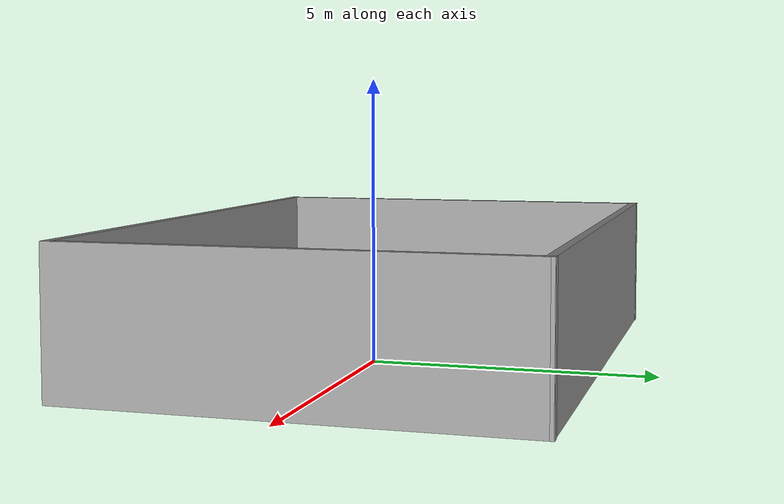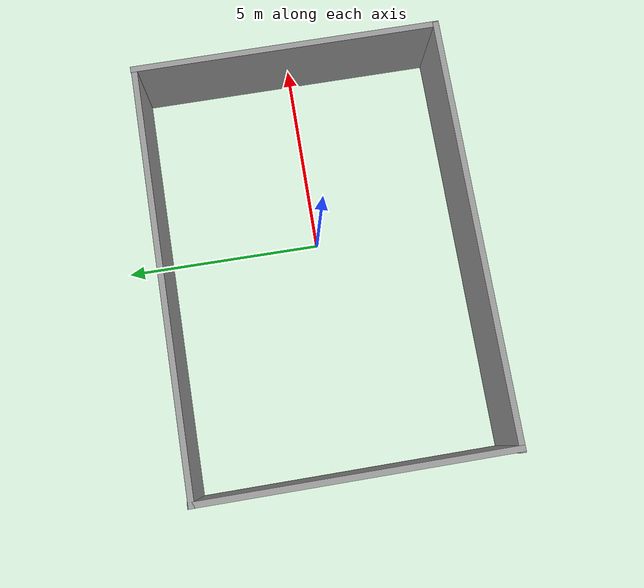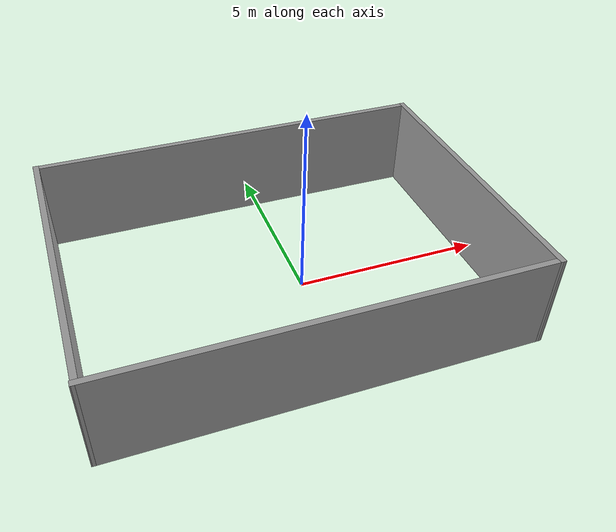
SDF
<?xml version='1.0'?>
<sdf version='1.6'>
  <model name='testbuilding'>
    <pose frame=''>-0.658856 0.105753 0 0 -0 0</pose>
    <link name='Wall_13'>
      <collision name='Wall_13_Collision'>
        <geometry>
          <box>
            <size>10.7551 0.15 2.5</size>
          </box>
        </geometry>
        <pose frame=''>0 0 1.25 0 -0 0</pose>
      </collision>
      <visual name='Wall_13_Visual'>
        <pose frame=''>0 0 1.25 0 -0 0</pose>
        <geometry>
          <box>
            <size>10.7551 0.15 2.5</size>
          </box>
        </geometry>
        <material>
          <script>
            <uri>file://media/materials/scripts/gazebo.material</uri>
            <name>Gazebo/Grey</name>
          </script>
          <ambient>1 1 1 1</ambient>
        </material>
        <meta>
          <layer>0</layer>
        </meta>
      </visual>
      <pose frame=''>-0.011563 3.80963 0 0 -0 0</pose>
    </link>
    <link name='Wall_14'>
      <collision name='Wall_14_Collision'>
        <geometry>
          <box>
            <size>7.7923 0.15 2.5</size>
          </box>
        </geometry>
        <pose frame=''>0 0 1.25 0 -0 0</pose>
      </collision>
      <visual name='Wall_14_Visual'>
        <pose frame=''>0 0 1.25 0 -0 0</pose>
        <geometry>
          <box>
            <size>7.7923 0.15 2.5</size>
          </box>
        </geometry>
        <material>
          <script>
            <uri>file://media/materials/scripts/gazebo.material</uri>
            <name>Gazebo/Grey</name>
          </script>
          <ambient>1 1 1 1</ambient>
        </material>
        <meta>
          <layer>0</layer>
        </meta>
      </visual>
      <pose frame=''>5.30275 0 0 0 0 -1.56772</pose>
    </link>
    <link name='Wall_15'>
      <collision name='Wall_15_Collision'>
        <geometry>
          <box>
            <size>10.7146 0.15 2.5</size>
          </box>
        </geometry>
        <pose frame=''>0 0 1.25 0 -0 0</pose>
      </collision>
      <visual name='Wall_15_Visual'>
        <pose frame=''>0 0 1.25 0 -0 0</pose>
        <geometry>
          <box>
            <size>10.7146 0.15 2.5</size>
          </box>
        </geometry>
        <material>
          <script>
            <uri>file://media/materials/scripts/gazebo.material</uri>
            <name>Gazebo/Grey</name>
          </script>
          <ambient>1 1 1 1</ambient>
        </material>
        <meta>
          <layer>0</layer>
        </meta>
      </visual>
      <pose frame=''>0.009056 -3.82113 0 0 -0 3.14159</pose>
    </link>
    <link name='Wall_16'>
      <collision name='Wall_16_Collision'>
        <geometry>
          <box>
            <size>7.79253 0.15 2.5</size>
          </box>
        </geometry>
        <pose frame=''>0 0 1.25 0 -0 0</pose>
      </collision>
      <visual name='Wall_16_Visual'>
        <pose frame=''>0 0 1.25 0 -0 0</pose>
        <geometry>
          <box>
            <size>7.79253 0.15 2.5</size>
          </box>
        </geometry>
        <material>
          <script>
            <uri>file://media/materials/scripts/gazebo.material</uri>
            <name>Gazebo/Grey</name>
          </script>
          <ambient>1 1 1 1</ambient>
        </material>
        <meta>
          <layer>0</layer>
        </meta>
      </visual>
      <pose frame=''>-5.28212 0 0 0 -0 1.57917</pose>
    </link>
    <static>1</static>
  </model>
</sdf>
